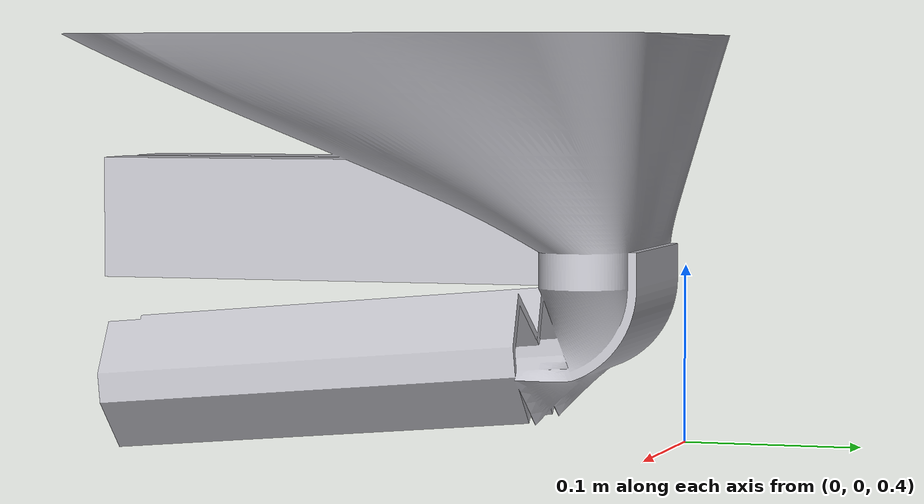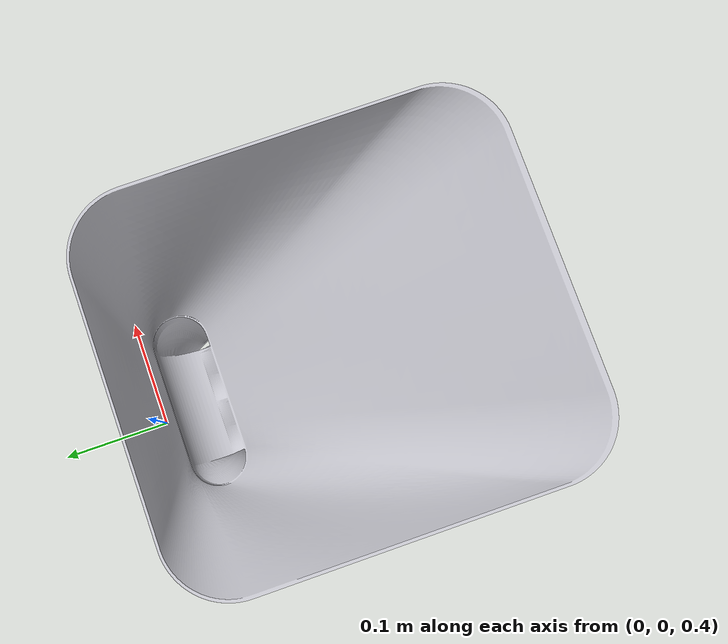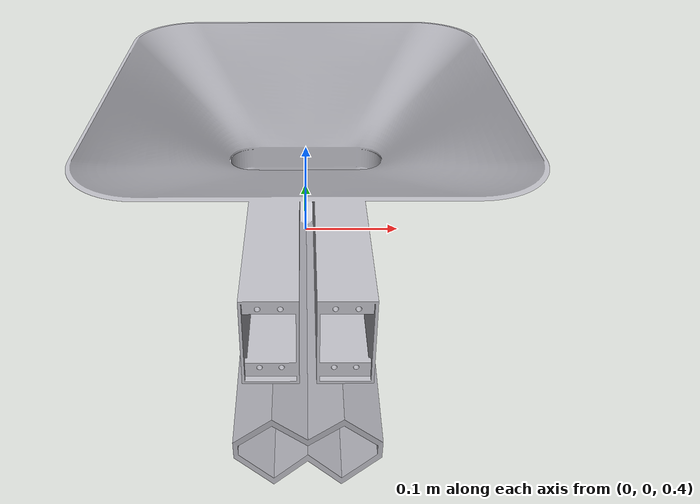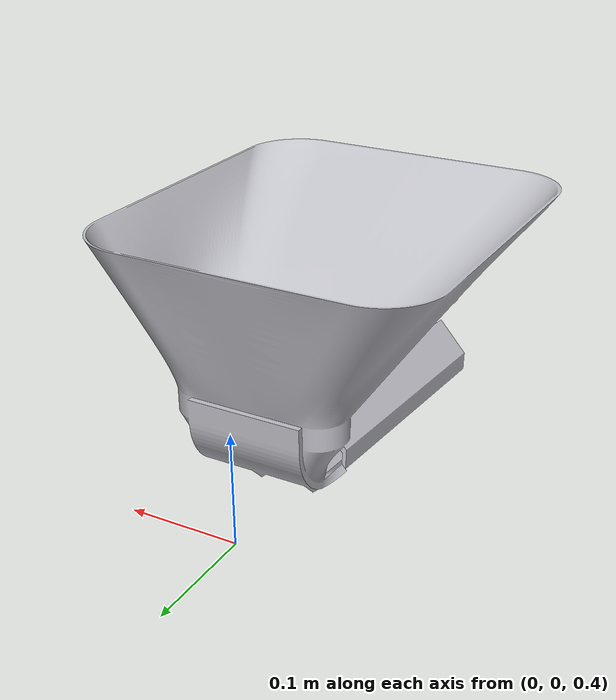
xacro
<?xml version="1.0" ?>
<robot name="my_robot" xmlns:xacro="http://www.ros.org/wiki/xacro">

  <xacro:include filename="$(find my_robot_description)/urdf/materials.xacro" />
  <xacro:include filename="$(find my_robot_description)/urdf/my_robot.trans" />
  <xacro:include filename="$(find my_robot_description)/urdf/my_robot.gazebo" />

  <link name="world"/>

  <joint name="world_joint" type="fixed">
    <parent link="world"/>
    <child link="base_footprint"/>
    <origin xyz="0 0 0.5" rpy="0 0 0"/>
  </joint>

  <link name="base_footprint"/>

  <joint name="base_joint" type="fixed">
    <parent link="base_footprint"/>
    <child link="base_link"/>
    <origin xyz="0 0 0" rpy="0 0 0"/>
  </joint>

  <link name="base_link">
    <inertial>
      <origin xyz="-0.00014829523023439365 -5.187834256388753e-06 -0.00826255176537795" rpy="0 0 0"/>
      <mass value="5.3407977991448305"/>
      <inertia ixx="0.09302" iyy="0.098259" izz="0.141083" ixy="2e-06" iyz="-1e-06" ixz="0.007205"/>
    </inertial>

    <visual>
      <origin xyz="0 0 0" rpy="0 0 0"/>
      <geometry>
        <mesh filename="package://my_robot_description/meshes/base_link.stl" scale="0.001 0.001 0.001"/>
      </geometry>
      <material name="silver"/>
    </visual>

    <collision>
      <origin xyz="0 0 0" rpy="0 0 0"/>
      <geometry>
        <mesh filename="package://my_robot_description/meshes/base_link.stl" scale="0.001 0.001 0.001"/>
      </geometry>

      <surface>
        <friction>
          <ode>
            <mu>0.4</mu>
            <mu2>0.4</mu2>
          </ode>
        </friction>
        <contact>
          <ode>
            <kp>100000000.0</kp>
            <kd>1.0</kd>
            <min_depth>0.001</min_depth>
            <max_vel>10.0</max_vel>
          </ode>
        </contact>
      </surface>
    </collision>
  </link>

</robot>
